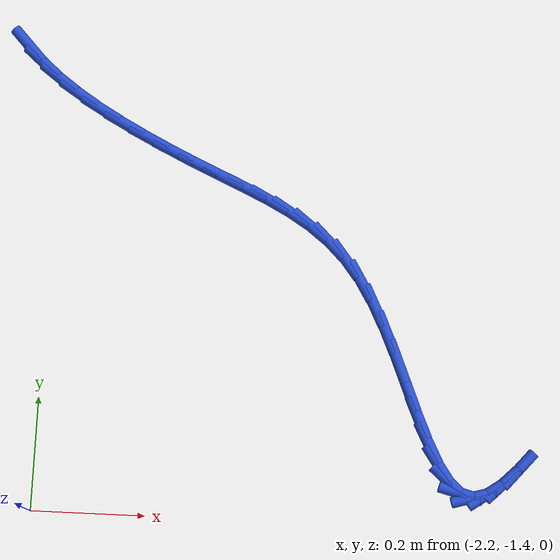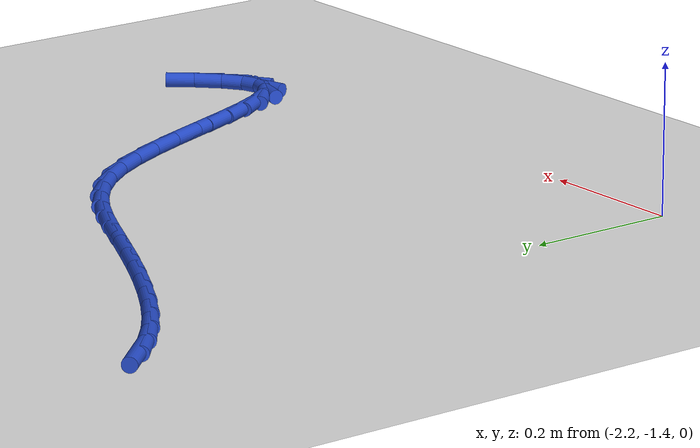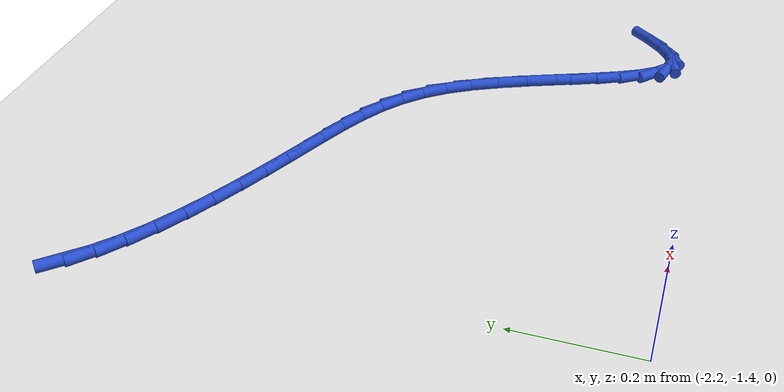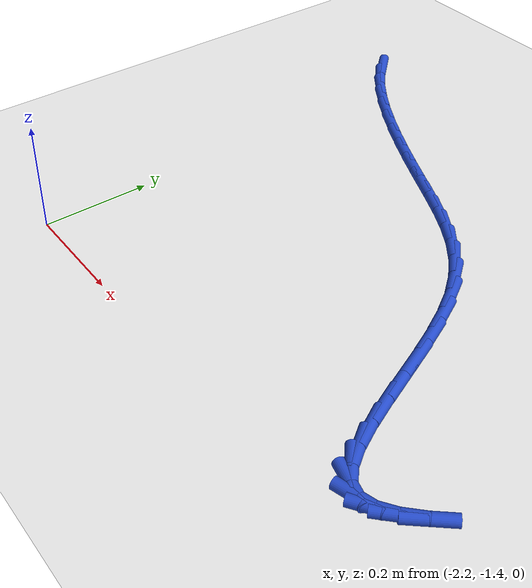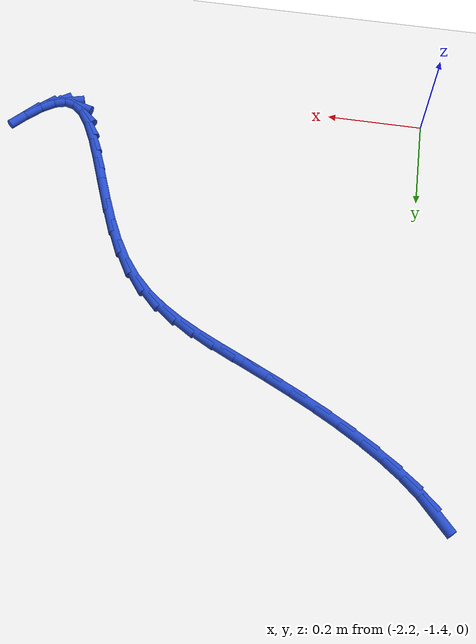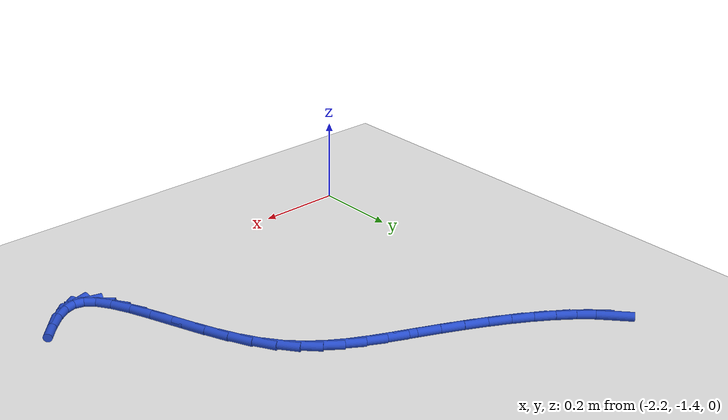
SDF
<sdf version="1.6">
 <world name="default">
  <model name="ground_plane">
   <static>1</static>
   <link name="link">
    <collision name="collision">
     <geometry><plane><normal>0 0 1</normal><size>100 100</size></plane></geometry>
     <surface><friction><ode><mu>100</mu><mu2>50</mu2></ode></friction></surface>
    </collision>
    <visual name="visual">
     <cast_shadows>0</cast_shadows>
     <geometry><plane><normal>0 0 1</normal><size>100 100</size></plane></geometry>
     <material>
      <script><uri>file://media/materials/scripts/gazebo.material</uri><name>Gazebo/WhiteGlow</name></script>
     </material>
    </visual>
   </link>
  </model>
  <model name="line">
   <link name="link_107">
    <pose>-2.2632998361129824 -0.5552385093434759 0.01 0 1.57 -0.8272849294531561</pose>
    <collision name="collision">
     <geometry><cylinder><radius>0.01</radius><length>0.08</length></cylinder></geometry>
    </collision>
    <visual name="visual">
     <material>
      <script><name>Gazebo/Blue</name><uri>file://media/materials/scripts/gazebo.material</uri></script>
     </material>
     <geometry><cylinder><radius>0.01</radius><length>0.08</length></cylinder></geometry>
    </visual>
   </link>
   <link name="link_108">
    <pose>-2.235435168628949 -0.5855410384956352 0.01 0 1.57 -0.7195886688213688</pose>
    <collision name="collision">
     <geometry><cylinder><radius>0.01</radius><length>0.08</length></cylinder></geometry>
    </collision>
    <visual name="visual">
     <material>
      <script><name>Gazebo/Blue</name><uri>file://media/materials/scripts/gazebo.material</uri></script>
     </material>
     <geometry><cylinder><radius>0.01</radius><length>0.08</length></cylinder></geometry>
    </visual>
   </link>
   <link name="link_109">
    <pose>-2.202077747743207 -0.6147734945705967 0.01 0 1.57 -0.6383692821752456</pose>
    <collision name="collision">
     <geometry><cylinder><radius>0.01</radius><length>0.08</length></cylinder></geometry>
    </collision>
    <visual name="visual">
     <material>
      <script><name>Gazebo/Blue</name><uri>file://media/materials/scripts/gazebo.material</uri></script>
     </material>
     <geometry><cylinder><radius>0.01</radius><length>0.08</length></cylinder></geometry>
    </visual>
   </link>
   <link name="link_110">
    <pose>-2.16417157516375 -0.6429003368831764 0.01 0 1.57 -0.5764359843376458</pose>
    <collision name="collision">
     <geometry><cylinder><radius>0.01</radius><length>0.08</length></cylinder></geometry>
    </collision>
    <visual name="visual">
     <material>
      <script><name>Gazebo/Blue</name><uri>file://media/materials/scripts/gazebo.material</uri></script>
     </material>
     <geometry><cylinder><radius>0.01</radius><length>0.08</length></cylinder></geometry>
    </visual>
   </link>
   <link name="link_111">
    <pose>-2.1226606525985723 -0.6698860247481926 0.01 0 1.57 -0.5287867045399922</pose>
    <collision name="collision">
     <geometry><cylinder><radius>0.01</radius><length>0.08</length></cylinder></geometry>
    </collision>
    <visual name="visual">
     <material>
      <script><name>Gazebo/Blue</name><uri>file://media/materials/scripts/gazebo.material</uri></script>
     </material>
     <geometry><cylinder><radius>0.01</radius><length>0.08</length></cylinder></geometry>
    </visual>
   </link>
   <link name="link_112">
    <pose>-2.078488981755668 -0.6956950174804627 0.01 0 1.57 -0.49204071918857184</pose>
    <collision name="collision">
     <geometry><cylinder><radius>0.01</radius><length>0.08</length></cylinder></geometry>
    </collision>
    <visual name="visual">
     <material>
      <script><name>Gazebo/Blue</name><uri>file://media/materials/scripts/gazebo.material</uri></script>
     </material>
     <geometry><cylinder><radius>0.01</radius><length>0.08</length></cylinder></geometry>
    </visual>
   </link>
   <link name="link_113">
    <pose>-2.0326005643430314 -0.7202917743948043 0.01 0 1.57 -0.4639630125773561</pose>
    <collision name="collision">
     <geometry><cylinder><radius>0.01</radius><length>0.08</length></cylinder></geometry>
    </collision>
    <visual name="visual">
     <material>
      <script><name>Gazebo/Blue</name><uri>file://media/materials/scripts/gazebo.material</uri></script>
     </material>
     <geometry><cylinder><radius>0.01</radius><length>0.08</length></cylinder></geometry>
    </visual>
   </link>
   <link name="link_114">
    <pose>-1.985939402068656 -0.7436407548060346 0.01 0 1.57 -0.4431492048202127</pose>
    <collision name="collision">
     <geometry><cylinder><radius>0.01</radius><length>0.08</length></cylinder></geometry>
    </collision>
    <visual name="visual">
     <material>
      <script><name>Gazebo/Blue</name><uri>file://media/materials/scripts/gazebo.material</uri></script>
     </material>
     <geometry><cylinder><radius>0.01</radius><length>0.08</length></cylinder></geometry>
    </visual>
   </link>
   <link name="link_115">
    <pose>-1.9394494966405362 -0.7657064180289719 0.01 0 1.57 -0.42885908326820416</pose>
    <collision name="collision">
     <geometry><cylinder><radius>0.01</radius><length>0.08</length></cylinder></geometry>
    </collision>
    <visual name="visual">
     <material>
      <script><name>Gazebo/Blue</name><uri>file://media/materials/scripts/gazebo.material</uri></script>
     </material>
     <geometry><cylinder><radius>0.01</radius><length>0.08</length></cylinder></geometry>
    </visual>
   </link>
   <link name="link_116">
    <pose>-1.8940745431709276 -0.7864537005766407 0.01 0 1.57 -0.42499804657028917</pose>
    <collision name="collision">
     <geometry><cylinder><radius>0.01</radius><length>0.08</length></cylinder></geometry>
    </collision>
    <visual name="visual">
     <material>
      <script><name>Gazebo/Blue</name><uri>file://media/materials/scripts/gazebo.material</uri></script>
     </material>
     <geometry><cylinder><radius>0.01</radius><length>0.08</length></cylinder></geometry>
    </visual>
   </link>
   <link name="link_117">
    <pose>-1.8505677324393237 -0.8061440477340708 0.01 0 1.57 -0.4440659303474307</pose>
    <collision name="collision">
     <geometry><cylinder><radius>0.01</radius><length>0.08</length></cylinder></geometry>
    </collision>
    <visual name="visual">
     <material>
      <script><name>Gazebo/Blue</name><uri>file://media/materials/scripts/gazebo.material</uri></script>
     </material>
     <geometry><cylinder><radius>0.01</radius><length>0.08</length></cylinder></geometry>
    </visual>
   </link>
   <link name="link_118">
    <pose>-1.8091671170917432 -0.8258406869460657 0.01 0 1.57 -0.4904406115757719</pose>
    <collision name="collision">
     <geometry><cylinder><radius>0.01</radius><length>0.08</length></cylinder></geometry>
    </collision>
    <visual name="visual">
     <material>
      <script><name>Gazebo/Blue</name><uri>file://media/materials/scripts/gazebo.material</uri></script>
     </material>
     <geometry><cylinder><radius>0.01</radius><length>0.08</length></cylinder></geometry>
    </visual>
   </link>
   <link name="link_119">
    <pose>-1.7700245340212015 -0.8467410353983157 0.01 0 1.57 -0.5652961853935227</pose>
    <collision name="collision">
     <geometry><cylinder><radius>0.01</radius><length>0.08</length></cylinder></geometry>
    </collision>
    <visual name="visual">
     <material>
      <script><name>Gazebo/Blue</name><uri>file://media/materials/scripts/gazebo.material</uri></script>
     </material>
     <geometry><cylinder><radius>0.01</radius><length>0.08</length></cylinder></geometry>
    </visual>
   </link>
   <link name="link_120">
    <pose>-1.7332918201207141 -0.8700425102765121 0.01 0 1.57 -0.6668980475577139</pose>
    <collision name="collision">
     <geometry><cylinder><radius>0.01</radius><length>0.08</length></cylinder></geometry>
    </collision>
    <visual name="visual">
     <material>
      <script><name>Gazebo/Blue</name><uri>file://media/materials/scripts/gazebo.material</uri></script>
     </material>
     <geometry><cylinder><radius>0.01</radius><length>0.08</length></cylinder></geometry>
    </visual>
   </link>
   <link name="link_121">
    <pose>-1.6991208122832968 -0.8969425287663444 0.01 0 1.57 -0.789174889670019</pose>
    <collision name="collision">
     <geometry><cylinder><radius>0.01</radius><length>0.08</length></cylinder></geometry>
    </collision>
    <visual name="visual">
     <material>
      <script><name>Gazebo/Blue</name><uri>file://media/materials/scripts/gazebo.material</uri></script>
     </material>
     <geometry><cylinder><radius>0.01</radius><length>0.08</length></cylinder></geometry>
    </visual>
   </link>
   <link name="link_122">
    <pose>-1.6676633474019635 -0.9286385080535028 0.01 0 1.57 -0.921642309820216</pose>
    <collision name="collision">
     <geometry><cylinder><radius>0.01</radius><length>0.08</length></cylinder></geometry>
    </collision>
    <visual name="visual">
     <material>
      <script><name>Gazebo/Blue</name><uri>file://media/materials/scripts/gazebo.material</uri></script>
     </material>
     <geometry><cylinder><radius>0.01</radius><length>0.08</length></cylinder></geometry>
    </visual>
   </link>
   <link name="link_123">
    <pose>-1.6390693741015734 -0.9663181624328209 0.01 0 1.57 -1.0385474637248227</pose>
    <collision name="collision">
     <geometry><cylinder><radius>0.01</radius><length>0.08</length></cylinder></geometry>
    </collision>
    <visual name="visual">
     <material>
      <script><name>Gazebo/Blue</name><uri>file://media/materials/scripts/gazebo.material</uri></script>
     </material>
     <geometry><cylinder><radius>0.01</radius><length>0.08</length></cylinder></geometry>
    </visual>
   </link>
   <link name="link_124">
    <pose>-1.6132816709692201 -1.0101046602243338 0.01 0 1.57 -1.116737874753606</pose>
    <collision name="collision">
     <geometry><cylinder><radius>0.01</radius><length>0.08</length></cylinder></geometry>
    </collision>
    <visual name="visual">
     <material>
      <script><name>Gazebo/Blue</name><uri>file://media/materials/scripts/gazebo.material</uri></script>
     </material>
     <geometry><cylinder><radius>0.01</radius><length>0.08</length></cylinder></geometry>
    </visual>
   </link>
   <link name="link_125">
    <pose>-1.5898516426221392 -1.058110089435736 0.01 0 1.57 -1.1644322414358987</pose>
    <collision name="collision">
     <geometry><cylinder><radius>0.01</radius><length>0.08</length></cylinder></geometry>
    </collision>
    <visual name="visual">
     <material>
      <script><name>Gazebo/Blue</name><uri>file://media/materials/scripts/gazebo.material</uri></script>
     </material>
     <geometry><cylinder><radius>0.01</radius><length>0.08</length></cylinder></geometry>
    </visual>
   </link>
   <link name="link_126">
    <pose>-1.56828722287073 -1.1082231627597539 0.01 0 1.57 -1.1877617550364863</pose>
    <collision name="collision">
     <geometry><cylinder><radius>0.01</radius><length>0.08</length></cylinder></geometry>
    </collision>
    <visual name="visual">
     <material>
      <script><name>Gazebo/Blue</name><uri>file://media/materials/scripts/gazebo.material</uri></script>
     </material>
     <geometry><cylinder><radius>0.01</radius><length>0.08</length></cylinder></geometry>
    </visual>
   </link>
   <link name="link_127">
    <pose>-1.5480963455253947 -1.1583325928891126 0.01 0 1.57 -1.1882869953818658</pose>
    <collision name="collision">
     <geometry><cylinder><radius>0.01</radius><length>0.08</length></cylinder></geometry>
    </collision>
    <visual name="visual">
     <material>
      <script><name>Gazebo/Blue</name><uri>file://media/materials/scripts/gazebo.material</uri></script>
     </material>
     <geometry><cylinder><radius>0.01</radius><length>0.08</length></cylinder></geometry>
    </visual>
   </link>
   <link name="link_128">
    <pose>-1.5287869443965316 -1.206327092516539 0.01 0 1.57 -1.162778762620522</pose>
    <collision name="collision">
     <geometry><cylinder><radius>0.01</radius><length>0.08</length></cylinder></geometry>
    </collision>
    <visual name="visual">
     <material>
      <script><name>Gazebo/Blue</name><uri>file://media/materials/scripts/gazebo.material</uri></script>
     </material>
     <geometry><cylinder><radius>0.01</radius><length>0.08</length></cylinder></geometry>
    </visual>
   </link>
   <link name="link_129">
    <pose>-1.5098669532945408 -1.2500953743347583 0.01 0 1.57 -1.1006033241332063</pose>
    <collision name="collision">
     <geometry><cylinder><radius>0.01</radius><length>0.08</length></cylinder></geometry>
    </collision>
    <visual name="visual">
     <material>
      <script><name>Gazebo/Blue</name><uri>file://media/materials/scripts/gazebo.material</uri></script>
     </material>
     <geometry><cylinder><radius>0.01</radius><length>0.08</length></cylinder></geometry>
    </visual>
   </link>
   <link name="link_130">
    <pose>-1.4908443060298229 -1.2875261510364975 0.01 0 1.57 -0.9757552008381877</pose>
    <collision name="collision">
     <geometry><cylinder><radius>0.01</radius><length>0.08</length></cylinder></geometry>
    </collision>
    <visual name="visual">
     <material>
      <script><name>Gazebo/Blue</name><uri>file://media/materials/scripts/gazebo.material</uri></script>
     </material>
     <geometry><cylinder><radius>0.01</radius><length>0.08</length></cylinder></geometry>
    </visual>
   </link>
   <link name="link_131">
    <pose>-1.4712269364127777 -1.3165081353144836 0.01 0 1.57 -0.727133408769368</pose>
    <collision name="collision">
     <geometry><cylinder><radius>0.01</radius><length>0.08</length></cylinder></geometry>
    </collision>
    <visual name="visual">
     <material>
      <script><name>Gazebo/Blue</name><uri>file://media/materials/scripts/gazebo.material</uri></script>
     </material>
     <geometry><cylinder><radius>0.01</radius><length>0.08</length></cylinder></geometry>
    </visual>
   </link>
   <link name="link_132">
    <pose>-1.4505227782538062 -1.3349300398614412 0.01 0 1.57 -0.25598504755976603</pose>
    <collision name="collision">
     <geometry><cylinder><radius>0.01</radius><length>0.08</length></cylinder></geometry>
    </collision>
    <visual name="visual">
     <material>
      <script><name>Gazebo/Blue</name><uri>file://media/materials/scripts/gazebo.material</uri></script>
     </material>
     <geometry><cylinder><radius>0.01</radius><length>0.08</length></cylinder></geometry>
    </visual>
   </link>
   <link name="link_133">
    <pose>-1.4282503665944162 -1.3407593319055076 0.01 0 1.57 0.2791551600123179</pose>
    <collision name="collision">
     <geometry><cylinder><radius>0.01</radius><length>0.08</length></cylinder></geometry>
    </collision>
    <visual name="visual">
     <material>
      <script><name>Gazebo/Blue</name><uri>file://media/materials/scripts/gazebo.material</uri></script>
     </material>
     <geometry><cylinder><radius>0.01</radius><length>0.08</length></cylinder></geometry>
    </visual>
   </link>
   <link name="link_134">
    <pose>-1.4041836436386066 -1.3338608500474909 0.01 0 1.57 0.6038697754967006</pose>
    <collision name="collision">
     <geometry><cylinder><radius>0.01</radius><length>0.08</length></cylinder></geometry>
    </collision>
    <visual name="visual">
     <material>
      <script><name>Gazebo/Blue</name><uri>file://media/materials/scripts/gazebo.material</uri></script>
     </material>
     <geometry><cylinder><radius>0.01</radius><length>0.08</length></cylinder></geometry>
    </visual>
   </link>
   <link name="link_135">
    <pose>-1.3783585620271472 -1.3160458587332453 0.01 0 1.57 0.7724518132404575</pose>
    <collision name="collision">
     <geometry><cylinder><radius>0.01</radius><length>0.08</length></cylinder></geometry>
    </collision>
    <visual name="visual">
     <material>
      <script><name>Gazebo/Blue</name><uri>file://media/materials/scripts/gazebo.material</uri></script>
     </material>
     <geometry><cylinder><radius>0.01</radius><length>0.08</length></cylinder></geometry>
    </visual>
   </link>
   <link name="link_136">
    <pose>-1.3508229965565213 -1.289214189842398 0.01 0 1.57 0.8604838016719927</pose>
    <collision name="collision">
     <geometry><cylinder><radius>0.01</radius><length>0.08</length></cylinder></geometry>
    </collision>
    <visual name="visual">
     <material>
      <script><name>Gazebo/Blue</name><uri>file://media/materials/scripts/gazebo.material</uri></script>
     </material>
     <geometry><cylinder><radius>0.01</radius><length>0.08</length></cylinder></geometry>
    </visual>
   </link>
  </model>
 </world>
</sdf>
